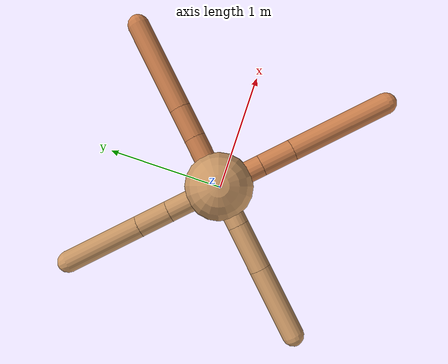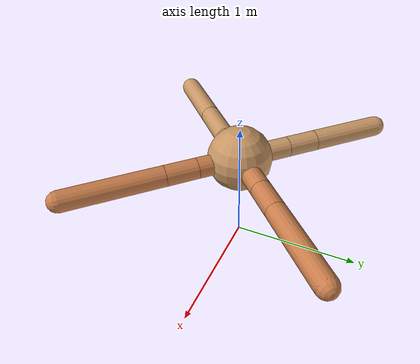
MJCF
<mujoco model="ant">
  <compiler angle="degree" coordinate="local" inertiafromgeom="true" />
  <option integrator="RK4" timestep="0.01" />
  <custom>
    <numeric data="0.0 0.0 0.55 1.0 0.0 0.0 0.0 0.0 1.0 0.0 -1.0 0.0 -1.0 0.0 1.0" name="init_qpos" />
  </custom>
  <default>
    <joint armature="1" damping="1" limited="true" />
    <geom conaffinity="0" condim="3" density="5.0" friction="1.5 0.1 0.1" margin="0.01" rgba="0.8 0.6 0.4 1" />
  </default>
  <worldbody>
    <body name="torso" pos="0 0 0.75">
      <geom name="torso_geom" pos="0 0 0" size="0.25" type="sphere" />

      <body name="front_left_leg" pos="0 0 0">
        <geom fromto="0.0 0.0 0.0 0.2775502120033897 0.2775502120033897 0.0" name="aux_1_geom" size="0.08" type="capsule" rgba=".8 .5 .3 1" />
        <body name="aux_1" pos="0.2775502120033897 0.2775502120033897 0.0">
          <joint axis="0 0 1" name="hip_1" pos="0.0 0.0 0.0" range="-40 40" type="hinge" />
          <geom fromto="0.0 0.0 0.0 0.16833386144725904 0.16833386144725904 0.0" name="left_leg_geom" size="0.08" type="capsule" rgba=".8 .5 .3 1" />
          <body pos="0.16833386144725904 0.16833386144725904 0.0" name="front_left_foot">
            <joint axis="-1 1 0" name="ankle_1" pos="0.0 0.0 0.0" range="30 100" type="hinge" />
            <geom fromto="0.0 0.0 0.0 0.4799844159780922 0.4799844159780922 0.0" name="left_ankle_geom" size="0.08" type="capsule" rgba=".8 .5 .3 1" />
          </body>
        </body>
      </body>
      <body name="front_right_leg" pos="0 0 0">
        <geom fromto="0.0 0.0 0.0 -0.28456423701679634 0.28456423701679634 0.0" name="aux_2_geom" size="0.08" type="capsule" />
        <body name="aux_2" pos="-0.28456423701679634 0.28456423701679634 0.0">
          <joint axis="0 0 1" name="hip_2" pos="0.0 0.0 0.0" range="-40 40" type="hinge" />
          <geom fromto="0.0 0.0 0.0 -0.16891182934808321 0.16891182934808321 0.0" name="right_leg_geom" size="0.08" type="capsule" />
          <body pos="-0.16891182934808321 0.16891182934808321 0.0" name="front_right_foot">
            <joint axis="1 1 0" name="ankle_2" pos="0.0 0.0 0.0" range="-100 -30" type="hinge" />
            <geom fromto="0.0 0.0 0.0 -0.39952331227396043 0.39952331227396043 0.0" name="right_ankle_geom" size="0.08" type="capsule" />
          </body>
        </body>
      </body>
      <body name="left_back_leg" pos="0 0 0">
        <geom fromto="0.0 0.0 0.0 -0.22020017696051425 -0.22020017696051425 0.0" name="aux_3_geom" size="0.08" type="capsule" />
        <body name="aux_3" pos="-0.22020017696051425 -0.22020017696051425 0.0">
          <joint axis="0 0 1" name="hip_3" pos="0.0 0.0 0.0" range="-40 40" type="hinge" />
          <geom fromto="0.0 0.0 0.0 -0.24641568644824485 -0.24641568644824485 0.0" name="back_leg_geom" size="0.08" type="capsule" />
          <body pos="-0.24641568644824485 -0.24641568644824485 0.0" name="left_back_foot">
            <joint axis="-1 1 0" name="ankle_3" pos="0.0 0.0 0.0" range="-100 -30" type="hinge" />
            <geom fromto="0.0 0.0 0.0 -0.37373201967006686 -0.37373201967006686 0.0" name="third_ankle_geom" size="0.08" type="capsule" />
          </body>
        </body>
      </body>
      <body name="right_back_leg" pos="0 0 0">
        <geom fromto="0.0 0.0 0.0 0.24156357708237222 -0.24156357708237222 0.0" name="aux_4_geom" size="0.08" type="capsule" rgba=".8 .5 .3 1" />
        <body name="aux_4" pos="0.24156357708237222 -0.24156357708237222 0.0">
          <joint axis="0 0 1" name="hip_4" pos="0.0 0.0 0.0" range="-40 40" type="hinge" />
          <geom fromto="0.0 0.0 0.0 0.17557794101324628 -0.17557794101324628 0.0" name="rightback_leg_geom" size="0.08" type="capsule" rgba=".8 .5 .3 1" />
          <body pos="0.17557794101324628 -0.17557794101324628 0.0" name="right_back_foot">
            <joint axis="1 1 0" name="ankle_4" pos="0.0 0.0 0.0" range="30 100" type="hinge" />
            <geom fromto="0.0 0.0 0.0 0.5357119315002392 -0.5357119315002392 0.0" name="fourth_ankle_geom" size="0.08" type="capsule" rgba=".8 .5 .3 1" />
          </body>
        </body>
      </body>
    </body>
  </worldbody>
  <actuator>
    <motor ctrllimited="true" ctrlrange="-1.0 1.0" joint="hip_4" gear="150" />
    <motor ctrllimited="true" ctrlrange="-1.0 1.0" joint="ankle_4" gear="150" />
    <motor ctrllimited="true" ctrlrange="-1.0 1.0" joint="hip_1" gear="150" />
    <motor ctrllimited="true" ctrlrange="-1.0 1.0" joint="ankle_1" gear="150" />
    <motor ctrllimited="true" ctrlrange="-1.0 1.0" joint="hip_2" gear="150" />
    <motor ctrllimited="true" ctrlrange="-1.0 1.0" joint="ankle_2" gear="150" />
    <motor ctrllimited="true" ctrlrange="-1.0 1.0" joint="hip_3" gear="150" />
    <motor ctrllimited="true" ctrlrange="-1.0 1.0" joint="ankle_3" gear="150" />
  </actuator>
</mujoco>
